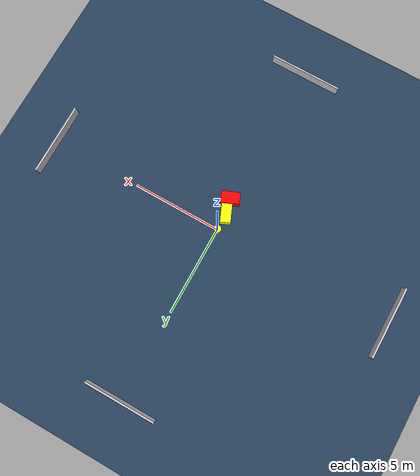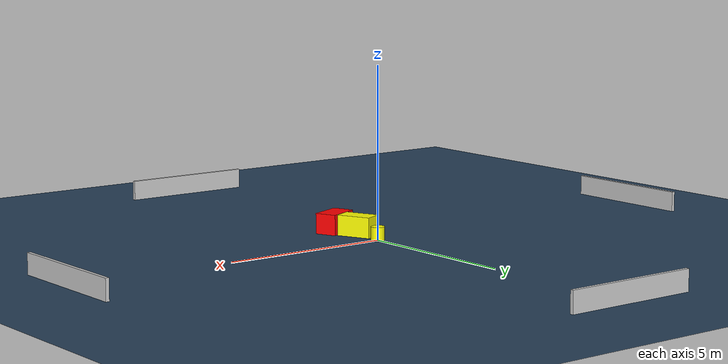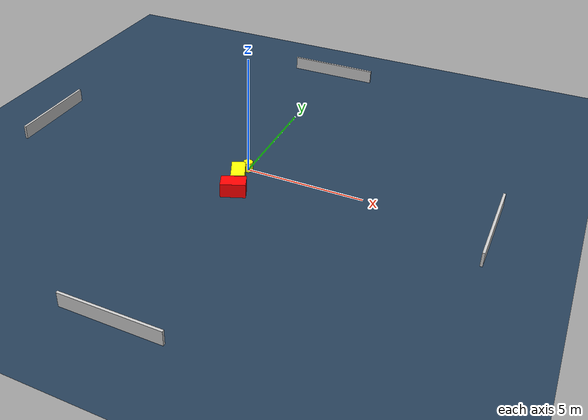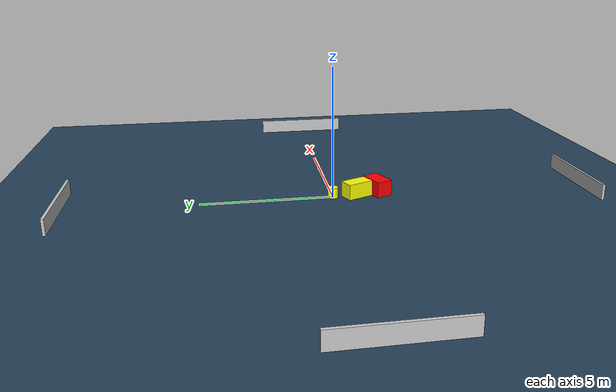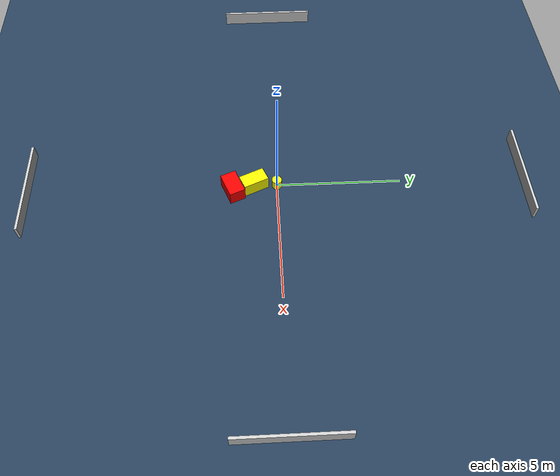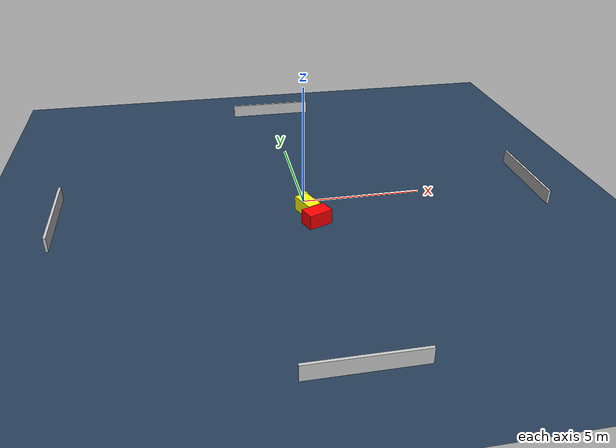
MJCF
<?xml version="1.0" ?>
<mujoco model="generated_environment">
  <option timestep="0.01" integrator="RK4" cone="elliptic"/>
  <default>
    <geom density="1"/>
  </default>
  <asset>
    <texture builtin="gradient" height="3072" name="skybox" rgb1="0.3 0.5 0.7" rgb2="0 0 0" type="skybox" width="512"/>
    <texture builtin="checker" height="300" name="groundplane" rgb1="0.2 0.3 0.4" rgb2="0.1 0.2 0.3" type="2d" width="300"/>
    <material name="groundplane" reflectance="0.2" texrepeat="5 5" texture="groundplane"/>
  </asset>
  <worldbody>
    <light dir="0 0 -1" directional="true" pos="0 0 1.5"/>
    <geom condim="3" friction="0.5 0.005 0.001" material="groundplane" name="floor" pos="0 0 0" size="0 0 0.05" type="plane"/>
    <body name="walls">
      <geom name="wall_1" condim="4" pos="-10.0 0.0 0.3" rgba="0.800000011920929 0.800000011920929 0.800000011920929 1.0" size="0.05 2.0 0.3" type="box"/>
      <geom name="wall_2" condim="4" pos="10.0 0.0 0.3" rgba="0.800000011920929 0.800000011920929 0.800000011920929 1.0" size="0.05 2.0 0.3" type="box"/>
      <geom name="wall_3" condim="4" pos="0.0 -10.0 0.3" rgba="0.800000011920929 0.800000011920929 0.800000011920929 1.0" size="2.0 0.05 0.3" type="box"/>
      <geom name="wall_4" condim="4" pos="0.0 10.0 0.3" rgba="0.800000011920929 0.800000011920929 0.800000011920929 1.0" size="2.0 0.05 0.3" type="box"/>
    </body>
    <body name="robot">
      <joint name="joint_x" type="slide" pos="0 0 0" axis="1 0 0"/>
      <joint name="joint_y" type="slide" pos="0 0 0" axis="0 1 0"/>
      <geom name="robot" type="cylinder" pos="0.0 0.0 0.2" size="0.2 0.2 0.0" mass="5.0" friction="1.0 0.005 0.0001" condim="4" rgba="1.0 1.0 0.0 1.0"/>
    </body>
    <body name="obstacle_1_movable">
      <geom name="obstacle_1_movable" condim="4" pos="0.0008885063258886435 -0.9257510310365102 0.3" euler="0 0 203.26284757133712" friction="0.0 0.005 0.001" rgba="1.0 1.0 0.0 1.0" size="0.2843102445113941 0.5164913718062574 0.3" type="box" mass="0.1"/>
      <joint type="free"/>
    </body>
    <body name="obstacle_2_static">
      <geom name="obstacle_2_static" condim="4" pos="0.20961494551883994 -1.769963010884832 0.3" euler="0 0 202.0478158134084" friction="0.0 0.005 0.001" rgba="1.0 0.0 0.0 1.0" size="0.5101887223421293 0.3202503118315842 0.3" type="box"/>
    </body>
  </worldbody>
  <actuator>
    <motor name="actuator_x" joint="joint_x" gear="1" ctrlrange="-1 1"/>
    <motor name="actuator_y" joint="joint_y" gear="1" ctrlrange="-1 1"/>
  </actuator>
</mujoco>
